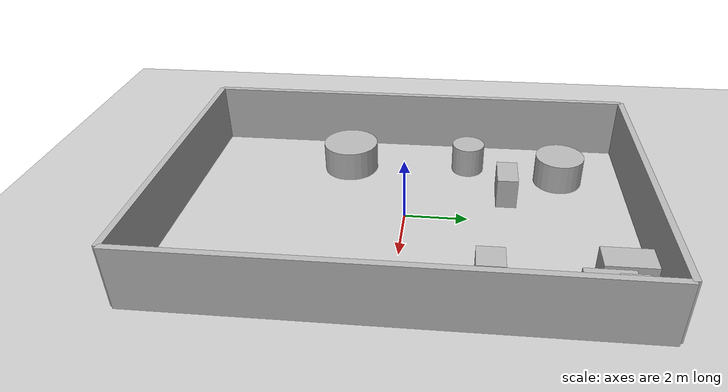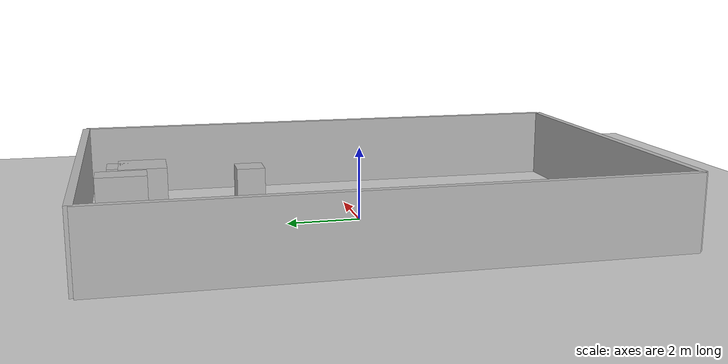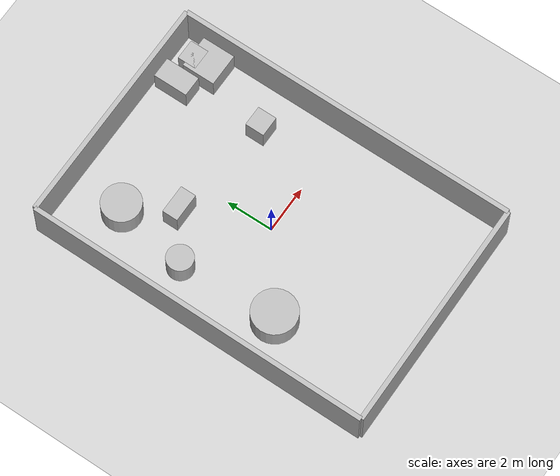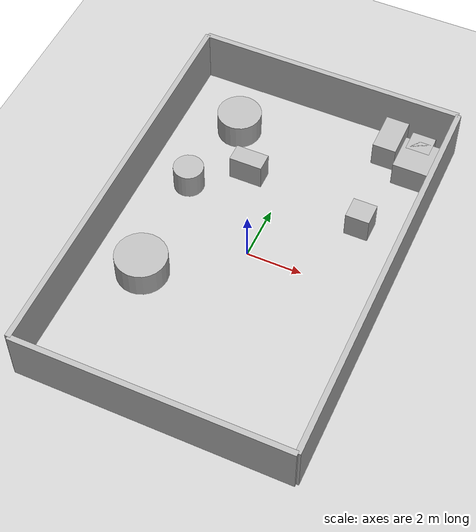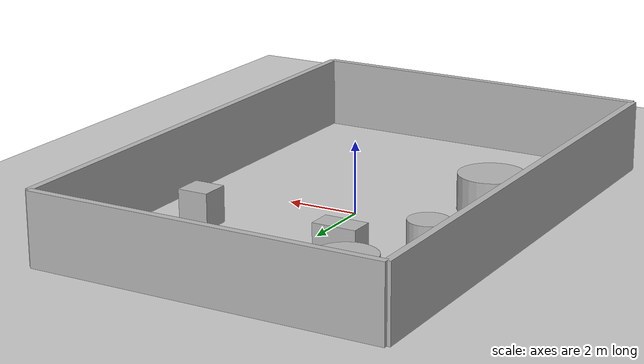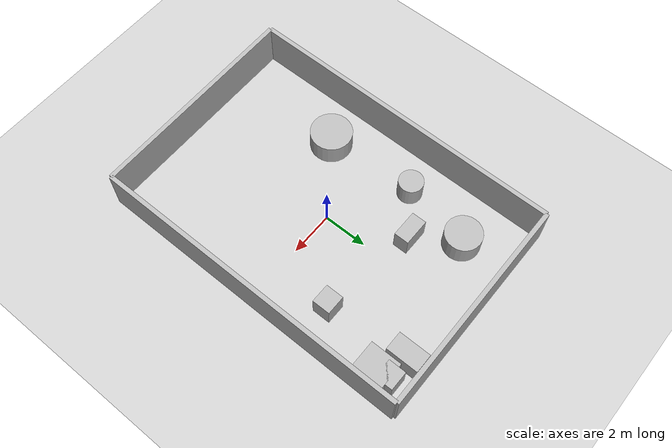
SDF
<?xml version="1.0"?>
<sdf version="1.6">
  <world name="env_34">

    <include><uri>model://ground_plane</uri></include>
    <include><uri>model://sun</uri></include>

    <!-- WALLS -->
    <model name="wall_north"><static>true</static><pose>0 7.294435335017239 1 0 0 0</pose>
      <link name="link"><collision name="collision">
        <geometry><box><size>9.82455060016984 0.2 2</size></box></geometry>
      </collision><visual name="visual">
        <geometry><box><size>9.82455060016984 0.2 2</size></box></geometry>
      </visual></link>
    </model>

    <model name="wall_south"><static>true</static><pose>0 -7.294435335017239 1 0 0 0</pose>
      <link name="link"><collision name="collision">
        <geometry><box><size>9.82455060016984 0.2 2</size></box></geometry>
      </collision><visual name="visual">
        <geometry><box><size>9.82455060016984 0.2 2</size></box></geometry>
      </visual></link>
    </model>

    <model name="wall_east"><static>true</static><pose>4.91227530008492 0 1 0 0 1.57</pose>
      <link name="link"><collision name="collision">
        <geometry><box><size>14.588870670034478 0.2 2</size></box></geometry>
      </collision><visual name="visual">
        <geometry><box><size>14.588870670034478 0.2 2</size></box></geometry>
      </visual></link>
    </model>

    <model name="wall_west"><static>true</static><pose>-4.91227530008492 0 1 0 0 1.57</pose>
      <link name="link"><collision name="collision">
        <geometry><box><size>14.588870670034478 0.2 2</size></box></geometry>
      </collision><visual name="visual">
        <geometry><box><size>14.588870670034478 0.2 2</size></box></geometry>
      </visual></link>
    </model>

    <!-- SENSOR -->

    <model name="lidar_sensor">
      <static>true</static>
      <pose>3.9413043051703873 -0.12581130652846007 0.4 0 0 0</pose>
      <link name="link">
        <sensor name="lidar" type="ray">
          <pose>0 0 0 0 0 0</pose>
          <visualize>true</visualize>
          <always_on>true</always_on>
          <update_rate>10</update_rate>
          <ray>
            <scan><horizontal>
              <samples>240</samples>
              <resolution>1</resolution>
              <min_angle>-3.14159</min_angle>
              <max_angle>3.14159</max_angle>
            </horizontal></scan>
            <range><min>0.15</min><max>20.0</max><resolution>0.01</resolution></range>
          </ray>
          <plugin name="lidar_plugin" filename="liblidar_plugin.so"/>
        </sensor>
      </link>
    </model>

    <!-- OBSTACLES -->

    <model name="obstacle_0">
      <static>true</static>
      <pose>4.0708372033115605 5.715946960543603 0.5 0 0 0</pose>
      <link name="link">
        <collision name="collision">
          <geometry><box><size>1.4 1.41 1.0</size></box></geometry>
        </collision>
        <visual name="visual">
          <geometry><box><size>1.4 1.41 1.0</size></box></geometry>
        </visual>
      </link>
    </model>

    <model name="obstacle_1">
      <static>true</static>
      <pose>-2.60500435563608 5.0503527174319345 0.5 0 0 0</pose>
      <link name="link">
        <collision name="collision">
          <geometry><cylinder><radius>0.81</radius><length>1.0</length></cylinder></geometry>
        </collision>
        <visual name="visual">
          <geometry><cylinder><radius>0.81</radius><length>1.0</length></cylinder></geometry>
        </visual>
      </link>
    </model>

    <model name="obstacle_2">
      <static>true</static>
      <pose>-2.954620896814127 -2.169687704552673 0.5 0 0 0</pose>
      <link name="link">
        <collision name="collision">
          <geometry><cylinder><radius>0.93</radius><length>1.0</length></cylinder></geometry>
        </collision>
        <visual name="visual">
          <geometry><cylinder><radius>0.93</radius><length>1.0</length></cylinder></geometry>
        </visual>
      </link>
    </model>

    <model name="obstacle_3">
      <static>true</static>
      <pose>3.1122761879664695 2.6248210426193843 0.5 0 0 0</pose>
      <link name="link">
        <collision name="collision">
          <geometry><box><size>0.87 0.82 1.0</size></box></geometry>
        </collision>
        <visual name="visual">
          <geometry><box><size>0.87 0.82 1.0</size></box></geometry>
        </visual>
      </link>
    </model>

    <model name="obstacle_4">
      <static>true</static>
      <pose>-1.4090948766077451 3.238494370903524 0.5 0 0 0</pose>
      <link name="link">
        <collision name="collision">
          <geometry><box><size>1.22 0.67 1.0</size></box></geometry>
        </collision>
        <visual name="visual">
          <geometry><box><size>1.22 0.67 1.0</size></box></geometry>
        </visual>
      </link>
    </model>

    <model name="obstacle_5">
      <static>true</static>
      <pose>-3.182350750683038 1.9532387551087815 0.5 0 0 0</pose>
      <link name="link">
        <collision name="collision">
          <geometry><cylinder><radius>0.55</radius><length>1.0</length></cylinder></geometry>
        </collision>
        <visual name="visual">
          <geometry><cylinder><radius>0.55</radius><length>1.0</length></cylinder></geometry>
        </visual>
      </link>
    </model>

    <model name="obstacle_6">
      <static>true</static>
      <pose>3.9524086667309515 6.350933446985286 0.5 0 0 0</pose>
      <link name="link">
        <collision name="collision">
          <geometry><box><size>0.87 0.8 1.0</size></box></geometry>
        </collision>
        <visual name="visual">
          <geometry><box><size>0.87 0.8 1.0</size></box></geometry>
        </visual>
      </link>
    </model>

    <model name="obstacle_7">
      <static>true</static>
      <pose>2.8219844810041996 6.335594320148884 0.5 0 0 0</pose>
      <link name="link">
        <collision name="collision">
          <geometry><box><size>0.86 1.47 1.0</size></box></geometry>
        </collision>
        <visual name="visual">
          <geometry><box><size>0.86 1.47 1.0</size></box></geometry>
        </visual>
      </link>
    </model>

  </world>
</sdf>
